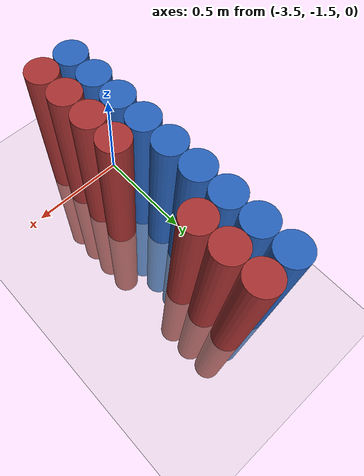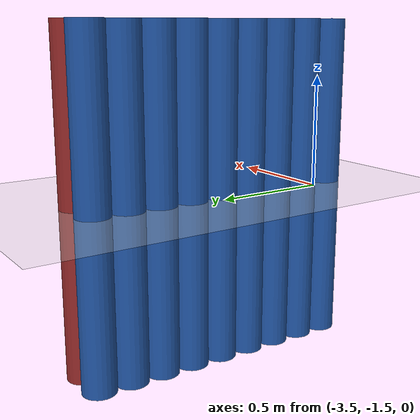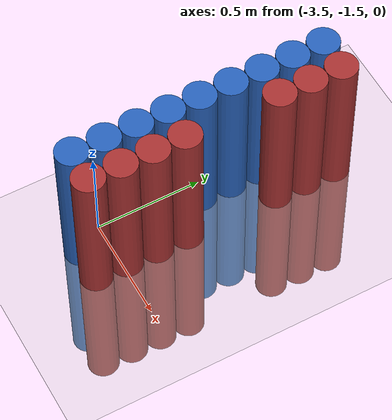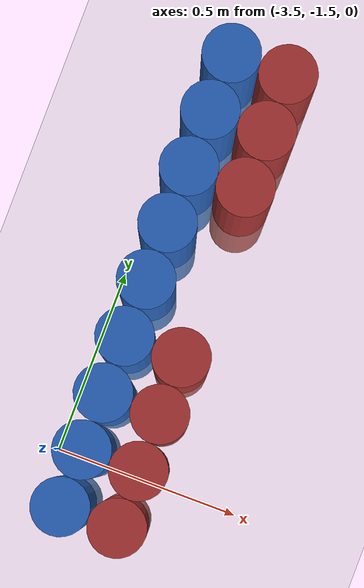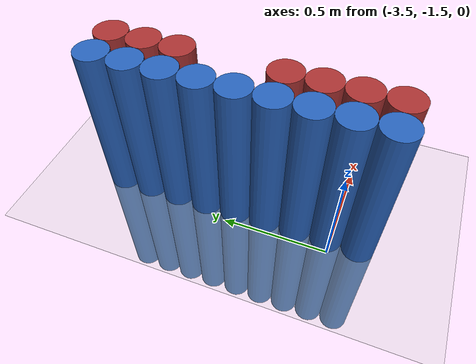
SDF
<sdf version="1.6">
 <world name="default">
  <model name="ground_plane">
   <static>1</static>
   <link name="link">
    <collision name="collision">
     <geometry><plane><normal>0 0 1</normal><size>100 100</size></plane></geometry>
     <surface><friction><ode><mu>100</mu><mu2>50</mu2></ode></friction></surface>
    </collision>
    <visual name="visual">
     <cast_shadows>0</cast_shadows>
     <geometry><plane><normal>0 0 1</normal><size>100 100</size></plane></geometry>
     <material>
      <script><uri>file://media/materials/scripts/gazebo.material</uri><name>Gazebo/Grey</name></script>
     </material>
    </visual>
   </link>
  </model>
  <model name="unit_cylinder_93">
   <static>1</static>
   <pose>-3.425000 -1.625000 0.000000 0.000000 0.000000 0.000000</pose>
   <link name="link">
    <inertial>
     <mass>1</mass>
     <inertia><ixx>0.145833</ixx><ixy>0</ixy><ixz>0</ixz><iyy>0.145833</iyy><iyz>0</iyz><izz>0.125</izz></inertia>
    </inertial>
    <collision name="collision">
     <geometry><cylinder><radius>0.075000</radius><length>1.5</length></cylinder></geometry>
    </collision>
    <visual name="visual">
     <geometry><cylinder><radius>0.075000</radius><length>1.5</length></cylinder></geometry>
     <material>
      <ambient>0.152000 0.379000 0.720000 1</ambient>
      <diffuse>0.152000 0.379000 0.720000 1</diffuse>
     </material>
     <material>
      <script><name>Gazebo/Grey</name><uri>file://media/materials/scripts/gazebo.material</uri></script>
     </material>
    </visual>
   </link>
  </model>
  <model name="unit_cylinder_95">
   <static>1</static>
   <pose>-3.425000 -1.475000 0.000000 0.000000 0.000000 0.000000</pose>
   <link name="link">
    <inertial>
     <mass>1</mass>
     <inertia><ixx>0.145833</ixx><ixy>0</ixy><ixz>0</ixz><iyy>0.145833</iyy><iyz>0</iyz><izz>0.125</izz></inertia>
    </inertial>
    <collision name="collision">
     <geometry><cylinder><radius>0.075000</radius><length>1.5</length></cylinder></geometry>
    </collision>
    <visual name="visual">
     <geometry><cylinder><radius>0.075000</radius><length>1.5</length></cylinder></geometry>
     <material>
      <ambient>0.152000 0.379000 0.720000 1</ambient>
      <diffuse>0.152000 0.379000 0.720000 1</diffuse>
     </material>
     <material>
      <script><name>Gazebo/Grey</name><uri>file://media/materials/scripts/gazebo.material</uri></script>
     </material>
    </visual>
   </link>
  </model>
  <model name="unit_cylinder_97">
   <static>1</static>
   <pose>-3.425000 -1.325000 0.000000 0.000000 0.000000 0.000000</pose>
   <link name="link">
    <inertial>
     <mass>1</mass>
     <inertia><ixx>0.145833</ixx><ixy>0</ixy><ixz>0</ixz><iyy>0.145833</iyy><iyz>0</iyz><izz>0.125</izz></inertia>
    </inertial>
    <collision name="collision">
     <geometry><cylinder><radius>0.075000</radius><length>1.5</length></cylinder></geometry>
    </collision>
    <visual name="visual">
     <geometry><cylinder><radius>0.075000</radius><length>1.5</length></cylinder></geometry>
     <material>
      <ambient>0.152000 0.379000 0.720000 1</ambient>
      <diffuse>0.152000 0.379000 0.720000 1</diffuse>
     </material>
     <material>
      <script><name>Gazebo/Grey</name><uri>file://media/materials/scripts/gazebo.material</uri></script>
     </material>
    </visual>
   </link>
  </model>
  <model name="unit_cylinder_99">
   <static>1</static>
   <pose>-3.425000 -1.175000 0.000000 0.000000 0.000000 0.000000</pose>
   <link name="link">
    <inertial>
     <mass>1</mass>
     <inertia><ixx>0.145833</ixx><ixy>0</ixy><ixz>0</ixz><iyy>0.145833</iyy><iyz>0</iyz><izz>0.125</izz></inertia>
    </inertial>
    <collision name="collision">
     <geometry><cylinder><radius>0.075000</radius><length>1.5</length></cylinder></geometry>
    </collision>
    <visual name="visual">
     <geometry><cylinder><radius>0.075000</radius><length>1.5</length></cylinder></geometry>
     <material>
      <ambient>0.152000 0.379000 0.720000 1</ambient>
      <diffuse>0.152000 0.379000 0.720000 1</diffuse>
     </material>
     <material>
      <script><name>Gazebo/Grey</name><uri>file://media/materials/scripts/gazebo.material</uri></script>
     </material>
    </visual>
   </link>
  </model>
  <model name="unit_cylinder_101">
   <static>1</static>
   <pose>-3.425000 -1.025000 0.000000 0.000000 0.000000 0.000000</pose>
   <link name="link">
    <inertial>
     <mass>1</mass>
     <inertia><ixx>0.145833</ixx><ixy>0</ixy><ixz>0</ixz><iyy>0.145833</iyy><iyz>0</iyz><izz>0.125</izz></inertia>
    </inertial>
    <collision name="collision">
     <geometry><cylinder><radius>0.075000</radius><length>1.5</length></cylinder></geometry>
    </collision>
    <visual name="visual">
     <geometry><cylinder><radius>0.075000</radius><length>1.5</length></cylinder></geometry>
     <material>
      <ambient>0.152000 0.379000 0.720000 1</ambient>
      <diffuse>0.152000 0.379000 0.720000 1</diffuse>
     </material>
     <material>
      <script><name>Gazebo/Grey</name><uri>file://media/materials/scripts/gazebo.material</uri></script>
     </material>
    </visual>
   </link>
  </model>
  <model name="unit_cylinder_103">
   <static>1</static>
   <pose>-3.425000 -0.875000 0.000000 0.000000 0.000000 0.000000</pose>
   <link name="link">
    <inertial>
     <mass>1</mass>
     <inertia><ixx>0.145833</ixx><ixy>0</ixy><ixz>0</ixz><iyy>0.145833</iyy><iyz>0</iyz><izz>0.125</izz></inertia>
    </inertial>
    <collision name="collision">
     <geometry><cylinder><radius>0.075000</radius><length>1.5</length></cylinder></geometry>
    </collision>
    <visual name="visual">
     <geometry><cylinder><radius>0.075000</radius><length>1.5</length></cylinder></geometry>
     <material>
      <ambient>0.152000 0.379000 0.720000 1</ambient>
      <diffuse>0.152000 0.379000 0.720000 1</diffuse>
     </material>
     <material>
      <script><name>Gazebo/Grey</name><uri>file://media/materials/scripts/gazebo.material</uri></script>
     </material>
    </visual>
   </link>
  </model>
  <model name="unit_cylinder_105">
   <static>1</static>
   <pose>-3.425000 -0.725000 0.000000 0.000000 0.000000 0.000000</pose>
   <link name="link">
    <inertial>
     <mass>1</mass>
     <inertia><ixx>0.145833</ixx><ixy>0</ixy><ixz>0</ixz><iyy>0.145833</iyy><iyz>0</iyz><izz>0.125</izz></inertia>
    </inertial>
    <collision name="collision">
     <geometry><cylinder><radius>0.075000</radius><length>1.5</length></cylinder></geometry>
    </collision>
    <visual name="visual">
     <geometry><cylinder><radius>0.075000</radius><length>1.5</length></cylinder></geometry>
     <material>
      <ambient>0.152000 0.379000 0.720000 1</ambient>
      <diffuse>0.152000 0.379000 0.720000 1</diffuse>
     </material>
     <material>
      <script><name>Gazebo/Grey</name><uri>file://media/materials/scripts/gazebo.material</uri></script>
     </material>
    </visual>
   </link>
  </model>
  <model name="unit_cylinder_107">
   <static>1</static>
   <pose>-3.425000 -0.575000 0.000000 0.000000 0.000000 0.000000</pose>
   <link name="link">
    <inertial>
     <mass>1</mass>
     <inertia><ixx>0.145833</ixx><ixy>0</ixy><ixz>0</ixz><iyy>0.145833</iyy><iyz>0</iyz><izz>0.125</izz></inertia>
    </inertial>
    <collision name="collision">
     <geometry><cylinder><radius>0.075000</radius><length>1.5</length></cylinder></geometry>
    </collision>
    <visual name="visual">
     <geometry><cylinder><radius>0.075000</radius><length>1.5</length></cylinder></geometry>
     <material>
      <ambient>0.152000 0.379000 0.720000 1</ambient>
      <diffuse>0.152000 0.379000 0.720000 1</diffuse>
     </material>
     <material>
      <script><name>Gazebo/Grey</name><uri>file://media/materials/scripts/gazebo.material</uri></script>
     </material>
    </visual>
   </link>
  </model>
  <model name="unit_cylinder_109">
   <static>1</static>
   <pose>-3.425000 -0.425000 0.000000 0.000000 0.000000 0.000000</pose>
   <link name="link">
    <inertial>
     <mass>1</mass>
     <inertia><ixx>0.145833</ixx><ixy>0</ixy><ixz>0</ixz><iyy>0.145833</iyy><iyz>0</iyz><izz>0.125</izz></inertia>
    </inertial>
    <collision name="collision">
     <geometry><cylinder><radius>0.075000</radius><length>1.5</length></cylinder></geometry>
    </collision>
    <visual name="visual">
     <geometry><cylinder><radius>0.075000</radius><length>1.5</length></cylinder></geometry>
     <material>
      <ambient>0.152000 0.379000 0.720000 1</ambient>
      <diffuse>0.152000 0.379000 0.720000 1</diffuse>
     </material>
     <material>
      <script><name>Gazebo/Grey</name><uri>file://media/materials/scripts/gazebo.material</uri></script>
     </material>
    </visual>
   </link>
  </model>
  <model name="unit_cylinder_210">
   <static>1</static>
   <pose>-3.425000 -1.625000 0.000000 0.000000 0.000000 0.000000</pose>
   <link name="link">
    <inertial>
     <mass>1</mass>
     <inertia><ixx>0.145833</ixx><ixy>0</ixy><ixz>0</ixz><iyy>0.145833</iyy><iyz>0</iyz><izz>0.125</izz></inertia>
    </inertial>
    <collision name="collision">
     <geometry><cylinder><radius>0.075000</radius><length>1.5</length></cylinder></geometry>
    </collision>
    <visual name="visual">
     <geometry><cylinder><radius>0.075000</radius><length>1.5</length></cylinder></geometry>
     <material>
      <ambient>0.152000 0.379000 0.720000 1</ambient>
      <diffuse>0.152000 0.379000 0.720000 1</diffuse>
     </material>
     <material>
      <script><name>Gazebo/Grey</name><uri>file://media/materials/scripts/gazebo.material</uri></script>
     </material>
    </visual>
   </link>
  </model>
  <model name="unit_cylinder_211">
   <static>1</static>
   <pose>-3.425000 -1.475000 0.000000 0.000000 0.000000 0.000000</pose>
   <link name="link">
    <inertial>
     <mass>1</mass>
     <inertia><ixx>0.145833</ixx><ixy>0</ixy><ixz>0</ixz><iyy>0.145833</iyy><iyz>0</iyz><izz>0.125</izz></inertia>
    </inertial>
    <collision name="collision">
     <geometry><cylinder><radius>0.075000</radius><length>1.5</length></cylinder></geometry>
    </collision>
    <visual name="visual">
     <geometry><cylinder><radius>0.075000</radius><length>1.5</length></cylinder></geometry>
     <material>
      <ambient>0.152000 0.379000 0.720000 1</ambient>
      <diffuse>0.152000 0.379000 0.720000 1</diffuse>
     </material>
     <material>
      <script><name>Gazebo/Grey</name><uri>file://media/materials/scripts/gazebo.material</uri></script>
     </material>
    </visual>
   </link>
  </model>
  <model name="unit_cylinder_212">
   <static>1</static>
   <pose>-3.425000 -1.325000 0.000000 0.000000 0.000000 0.000000</pose>
   <link name="link">
    <inertial>
     <mass>1</mass>
     <inertia><ixx>0.145833</ixx><ixy>0</ixy><ixz>0</ixz><iyy>0.145833</iyy><iyz>0</iyz><izz>0.125</izz></inertia>
    </inertial>
    <collision name="collision">
     <geometry><cylinder><radius>0.075000</radius><length>1.5</length></cylinder></geometry>
    </collision>
    <visual name="visual">
     <geometry><cylinder><radius>0.075000</radius><length>1.5</length></cylinder></geometry>
     <material>
      <ambient>0.152000 0.379000 0.720000 1</ambient>
      <diffuse>0.152000 0.379000 0.720000 1</diffuse>
     </material>
     <material>
      <script><name>Gazebo/Grey</name><uri>file://media/materials/scripts/gazebo.material</uri></script>
     </material>
    </visual>
   </link>
  </model>
  <model name="unit_cylinder_213">
   <static>1</static>
   <pose>-3.425000 -1.175000 0.000000 0.000000 0.000000 0.000000</pose>
   <link name="link">
    <inertial>
     <mass>1</mass>
     <inertia><ixx>0.145833</ixx><ixy>0</ixy><ixz>0</ixz><iyy>0.145833</iyy><iyz>0</iyz><izz>0.125</izz></inertia>
    </inertial>
    <collision name="collision">
     <geometry><cylinder><radius>0.075000</radius><length>1.5</length></cylinder></geometry>
    </collision>
    <visual name="visual">
     <geometry><cylinder><radius>0.075000</radius><length>1.5</length></cylinder></geometry>
     <material>
      <ambient>0.152000 0.379000 0.720000 1</ambient>
      <diffuse>0.152000 0.379000 0.720000 1</diffuse>
     </material>
     <material>
      <script><name>Gazebo/Grey</name><uri>file://media/materials/scripts/gazebo.material</uri></script>
     </material>
    </visual>
   </link>
  </model>
  <model name="unit_cylinder_214">
   <static>1</static>
   <pose>-3.425000 -1.025000 0.000000 0.000000 0.000000 0.000000</pose>
   <link name="link">
    <inertial>
     <mass>1</mass>
     <inertia><ixx>0.145833</ixx><ixy>0</ixy><ixz>0</ixz><iyy>0.145833</iyy><iyz>0</iyz><izz>0.125</izz></inertia>
    </inertial>
    <collision name="collision">
     <geometry><cylinder><radius>0.075000</radius><length>1.5</length></cylinder></geometry>
    </collision>
    <visual name="visual">
     <geometry><cylinder><radius>0.075000</radius><length>1.5</length></cylinder></geometry>
     <material>
      <ambient>0.152000 0.379000 0.720000 1</ambient>
      <diffuse>0.152000 0.379000 0.720000 1</diffuse>
     </material>
     <material>
      <script><name>Gazebo/Grey</name><uri>file://media/materials/scripts/gazebo.material</uri></script>
     </material>
    </visual>
   </link>
  </model>
  <model name="unit_cylinder_215">
   <static>1</static>
   <pose>-3.425000 -0.875000 0.000000 0.000000 0.000000 0.000000</pose>
   <link name="link">
    <inertial>
     <mass>1</mass>
     <inertia><ixx>0.145833</ixx><ixy>0</ixy><ixz>0</ixz><iyy>0.145833</iyy><iyz>0</iyz><izz>0.125</izz></inertia>
    </inertial>
    <collision name="collision">
     <geometry><cylinder><radius>0.075000</radius><length>1.5</length></cylinder></geometry>
    </collision>
    <visual name="visual">
     <geometry><cylinder><radius>0.075000</radius><length>1.5</length></cylinder></geometry>
     <material>
      <ambient>0.152000 0.379000 0.720000 1</ambient>
      <diffuse>0.152000 0.379000 0.720000 1</diffuse>
     </material>
     <material>
      <script><name>Gazebo/Grey</name><uri>file://media/materials/scripts/gazebo.material</uri></script>
     </material>
    </visual>
   </link>
  </model>
  <model name="unit_cylinder_216">
   <static>1</static>
   <pose>-3.425000 -0.725000 0.000000 0.000000 0.000000 0.000000</pose>
   <link name="link">
    <inertial>
     <mass>1</mass>
     <inertia><ixx>0.145833</ixx><ixy>0</ixy><ixz>0</ixz><iyy>0.145833</iyy><iyz>0</iyz><izz>0.125</izz></inertia>
    </inertial>
    <collision name="collision">
     <geometry><cylinder><radius>0.075000</radius><length>1.5</length></cylinder></geometry>
    </collision>
    <visual name="visual">
     <geometry><cylinder><radius>0.075000</radius><length>1.5</length></cylinder></geometry>
     <material>
      <ambient>0.152000 0.379000 0.720000 1</ambient>
      <diffuse>0.152000 0.379000 0.720000 1</diffuse>
     </material>
     <material>
      <script><name>Gazebo/Grey</name><uri>file://media/materials/scripts/gazebo.material</uri></script>
     </material>
    </visual>
   </link>
  </model>
  <model name="unit_cylinder_217">
   <static>1</static>
   <pose>-3.425000 -0.575000 0.000000 0.000000 0.000000 0.000000</pose>
   <link name="link">
    <inertial>
     <mass>1</mass>
     <inertia><ixx>0.145833</ixx><ixy>0</ixy><ixz>0</ixz><iyy>0.145833</iyy><iyz>0</iyz><izz>0.125</izz></inertia>
    </inertial>
    <collision name="collision">
     <geometry><cylinder><radius>0.075000</radius><length>1.5</length></cylinder></geometry>
    </collision>
    <visual name="visual">
     <geometry><cylinder><radius>0.075000</radius><length>1.5</length></cylinder></geometry>
     <material>
      <ambient>0.152000 0.379000 0.720000 1</ambient>
      <diffuse>0.152000 0.379000 0.720000 1</diffuse>
     </material>
     <material>
      <script><name>Gazebo/Grey</name><uri>file://media/materials/scripts/gazebo.material</uri></script>
     </material>
    </visual>
   </link>
  </model>
  <model name="unit_cylinder_218">
   <static>1</static>
   <pose>-3.425000 -0.425000 0.000000 0.000000 0.000000 0.000000</pose>
   <link name="link">
    <inertial>
     <mass>1</mass>
     <inertia><ixx>0.145833</ixx><ixy>0</ixy><ixz>0</ixz><iyy>0.145833</iyy><iyz>0</iyz><izz>0.125</izz></inertia>
    </inertial>
    <collision name="collision">
     <geometry><cylinder><radius>0.075000</radius><length>1.5</length></cylinder></geometry>
    </collision>
    <visual name="visual">
     <geometry><cylinder><radius>0.075000</radius><length>1.5</length></cylinder></geometry>
     <material>
      <ambient>0.152000 0.379000 0.720000 1</ambient>
      <diffuse>0.152000 0.379000 0.720000 1</diffuse>
     </material>
     <material>
      <script><name>Gazebo/Grey</name><uri>file://media/materials/scripts/gazebo.material</uri></script>
     </material>
    </visual>
   </link>
  </model>
  <model name="unit_cylinder_258">
   <static>1</static>
   <pose>-3.275000 -1.625000 0.000000 0.000000 0.000000 0.000000</pose>
   <link name="link">
    <inertial>
     <mass>1</mass>
     <inertia><ixx>0.145833</ixx><ixy>0</ixy><ixz>0</ixz><iyy>0.145833</iyy><iyz>0</iyz><izz>0.125</izz></inertia>
    </inertial>
    <collision name="collision">
     <geometry><cylinder><radius>0.075000</radius><length>1.5</length></cylinder></geometry>
    </collision>
    <visual name="visual">
     <geometry><cylinder><radius>0.075000</radius><length>1.5</length></cylinder></geometry>
     <material>
      <ambient>0.648000 0.192000 0.192000 1</ambient>
      <diffuse>0.648000 0.192000 0.192000 1</diffuse>
     </material>
     <material>
      <script><name>Gazebo/Grey</name><uri>file://media/materials/scripts/gazebo.material</uri></script>
     </material>
    </visual>
   </link>
  </model>
  <model name="unit_cylinder_259">
   <static>1</static>
   <pose>-3.275000 -1.475000 0.000000 0.000000 0.000000 0.000000</pose>
   <link name="link">
    <inertial>
     <mass>1</mass>
     <inertia><ixx>0.145833</ixx><ixy>0</ixy><ixz>0</ixz><iyy>0.145833</iyy><iyz>0</iyz><izz>0.125</izz></inertia>
    </inertial>
    <collision name="collision">
     <geometry><cylinder><radius>0.075000</radius><length>1.5</length></cylinder></geometry>
    </collision>
    <visual name="visual">
     <geometry><cylinder><radius>0.075000</radius><length>1.5</length></cylinder></geometry>
     <material>
      <ambient>0.648000 0.192000 0.192000 1</ambient>
      <diffuse>0.648000 0.192000 0.192000 1</diffuse>
     </material>
     <material>
      <script><name>Gazebo/Grey</name><uri>file://media/materials/scripts/gazebo.material</uri></script>
     </material>
    </visual>
   </link>
  </model>
  <model name="unit_cylinder_260">
   <static>1</static>
   <pose>-3.275000 -1.325000 0.000000 0.000000 0.000000 0.000000</pose>
   <link name="link">
    <inertial>
     <mass>1</mass>
     <inertia><ixx>0.145833</ixx><ixy>0</ixy><ixz>0</ixz><iyy>0.145833</iyy><iyz>0</iyz><izz>0.125</izz></inertia>
    </inertial>
    <collision name="collision">
     <geometry><cylinder><radius>0.075000</radius><length>1.5</length></cylinder></geometry>
    </collision>
    <visual name="visual">
     <geometry><cylinder><radius>0.075000</radius><length>1.5</length></cylinder></geometry>
     <material>
      <ambient>0.648000 0.192000 0.192000 1</ambient>
      <diffuse>0.648000 0.192000 0.192000 1</diffuse>
     </material>
     <material>
      <script><name>Gazebo/Grey</name><uri>file://media/materials/scripts/gazebo.material</uri></script>
     </material>
    </visual>
   </link>
  </model>
  <model name="unit_cylinder_261">
   <static>1</static>
   <pose>-3.275000 -1.175000 0.000000 0.000000 0.000000 0.000000</pose>
   <link name="link">
    <inertial>
     <mass>1</mass>
     <inertia><ixx>0.145833</ixx><ixy>0</ixy><ixz>0</ixz><iyy>0.145833</iyy><iyz>0</iyz><izz>0.125</izz></inertia>
    </inertial>
    <collision name="collision">
     <geometry><cylinder><radius>0.075000</radius><length>1.5</length></cylinder></geometry>
    </collision>
    <visual name="visual">
     <geometry><cylinder><radius>0.075000</radius><length>1.5</length></cylinder></geometry>
     <material>
      <ambient>0.648000 0.192000 0.192000 1</ambient>
      <diffuse>0.648000 0.192000 0.192000 1</diffuse>
     </material>
     <material>
      <script><name>Gazebo/Grey</name><uri>file://media/materials/scripts/gazebo.material</uri></script>
     </material>
    </visual>
   </link>
  </model>
  <model name="unit_cylinder_262">
   <static>1</static>
   <pose>-3.275000 -0.725000 0.000000 0.000000 0.000000 0.000000</pose>
   <link name="link">
    <inertial>
     <mass>1</mass>
     <inertia><ixx>0.145833</ixx><ixy>0</ixy><ixz>0</ixz><iyy>0.145833</iyy><iyz>0</iyz><izz>0.125</izz></inertia>
    </inertial>
    <collision name="collision">
     <geometry><cylinder><radius>0.075000</radius><length>1.5</length></cylinder></geometry>
    </collision>
    <visual name="visual">
     <geometry><cylinder><radius>0.075000</radius><length>1.5</length></cylinder></geometry>
     <material>
      <ambient>0.648000 0.192000 0.192000 1</ambient>
      <diffuse>0.648000 0.192000 0.192000 1</diffuse>
     </material>
     <material>
      <script><name>Gazebo/Grey</name><uri>file://media/materials/scripts/gazebo.material</uri></script>
     </material>
    </visual>
   </link>
  </model>
  <model name="unit_cylinder_263">
   <static>1</static>
   <pose>-3.275000 -0.575000 0.000000 0.000000 0.000000 0.000000</pose>
   <link name="link">
    <inertial>
     <mass>1</mass>
     <inertia><ixx>0.145833</ixx><ixy>0</ixy><ixz>0</ixz><iyy>0.145833</iyy><iyz>0</iyz><izz>0.125</izz></inertia>
    </inertial>
    <collision name="collision">
     <geometry><cylinder><radius>0.075000</radius><length>1.5</length></cylinder></geometry>
    </collision>
    <visual name="visual">
     <geometry><cylinder><radius>0.075000</radius><length>1.5</length></cylinder></geometry>
     <material>
      <ambient>0.648000 0.192000 0.192000 1</ambient>
      <diffuse>0.648000 0.192000 0.192000 1</diffuse>
     </material>
     <material>
      <script><name>Gazebo/Grey</name><uri>file://media/materials/scripts/gazebo.material</uri></script>
     </material>
    </visual>
   </link>
  </model>
  <model name="unit_cylinder_264">
   <static>1</static>
   <pose>-3.275000 -0.425000 0.000000 0.000000 0.000000 0.000000</pose>
   <link name="link">
    <inertial>
     <mass>1</mass>
     <inertia><ixx>0.145833</ixx><ixy>0</ixy><ixz>0</ixz><iyy>0.145833</iyy><iyz>0</iyz><izz>0.125</izz></inertia>
    </inertial>
    <collision name="collision">
     <geometry><cylinder><radius>0.075000</radius><length>1.5</length></cylinder></geometry>
    </collision>
    <visual name="visual">
     <geometry><cylinder><radius>0.075000</radius><length>1.5</length></cylinder></geometry>
     <material>
      <ambient>0.648000 0.192000 0.192000 1</ambient>
      <diffuse>0.648000 0.192000 0.192000 1</diffuse>
     </material>
     <material>
      <script><name>Gazebo/Grey</name><uri>file://media/materials/scripts/gazebo.material</uri></script>
     </material>
    </visual>
   </link>
  </model>
 </world>
</sdf>
